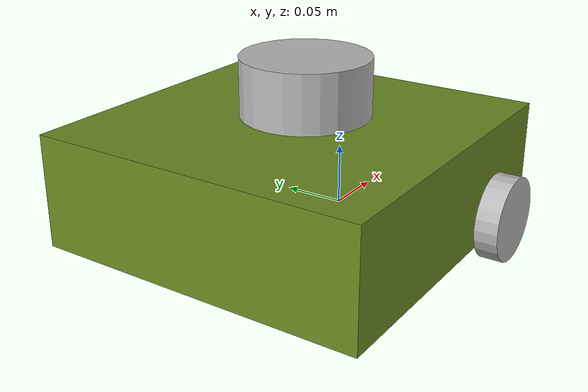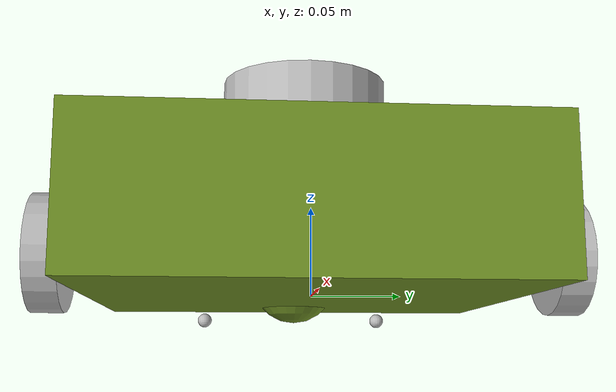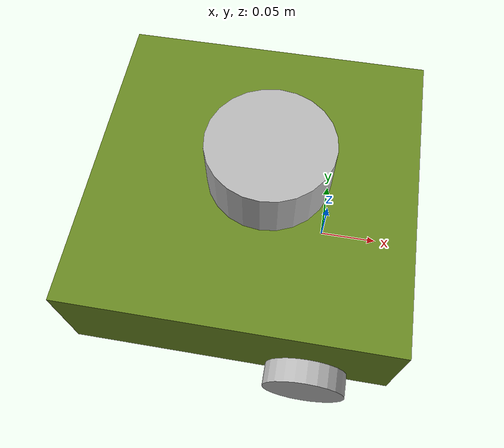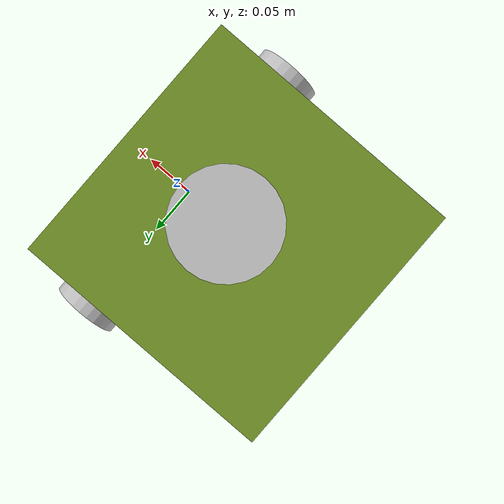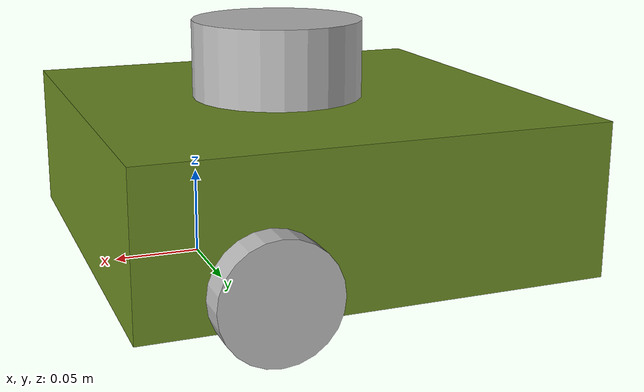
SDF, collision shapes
<?xml version="1.0" ?>
<sdf version="1.5">
  <model name="turtlebot3_waffle_rl">
  <pose>0.0 0.0 0.0 0.0 0.0 0.0</pose>

    <link name="base_footprint"/>

    <link name="base_link">

      <inertial>
        <pose>-0.064 0 0.048 0 0 0</pose>
        <inertia>
          <ixx>4.2111447e-02</ixx>
          <ixy>0</ixy>
          <ixz>0</ixz>
          <iyy>4.2111447e-02</iyy>
          <iyz>0</iyz>
          <izz>7.5254874e-02</izz>
        </inertia>
        <mass>1.3729096e+00</mass>
      </inertial>

      <collision name="base_collision">
        <pose>-0.064 0 0.048 0 0 0</pose>
        <geometry>
          <box>
            <size>0.265 0.265 0.089</size>
          </box>
        </geometry>
      </collision>

      <visual name="base_visual">
        <pose>-0.064 0 0 0 0 0</pose>
        <geometry>
          <mesh>
            <uri>model://turtlebot3_common/meshes/waffle_base.dae</uri>
            <scale>0.001 0.001 0.001</scale>
          </mesh>
        </geometry>
                <material>
          <shader type='pixel'>
            <normal_map>__default__</normal_map>
          </shader>
          <script>
            <name>ModelPreview_1::base_link::base_visual_MATERIAL_</name>
            <uri>__default__</uri>
          </script>
          <ambient>0.415 0.541 0.133 0</ambient>
          <diffuse>0.415 0.541 0.133 1</diffuse>
          <specular>0.1 0.1 0.1 1</specular>
          <emissive>0 0 0 1</emissive>
        </material>
      </visual>

      <collision name='caster_collision'>
        <pose>-0.15 0 0.023 0 0 0</pose>
        <geometry>
            <sphere>
            <radius>.03</radius>
          </sphere>
        </geometry>

        <surface>
          <friction>
            <ode>
              <mu>0</mu>
              <mu2>0</mu2>
              <slip1>1.0</slip1>
              <slip2>1.0</slip2>
            </ode>
          </friction>
        </surface>
      </collision>

      <visual name='caster_visual'>
        <pose>-0.15 0 0.023 0 0 0</pose>
        <geometry>
          <sphere>
        <radius>.03</radius>
          </sphere>
        </geometry>
        <material>
          <shader type='pixel'>
            <normal_map>__default__</normal_map>
          </shader>
          <script>
            <name>ModelPreview_1::base_link::caster_visual_MATERIAL_</name>
            <uri>__default__</uri>
          </script>
          <ambient>0 0 0 1</ambient>
          <diffuse>0 0 0 1</diffuse>
          <specular>0 0 0 1</specular>
          <emissive>0 0 0 1</emissive>
        </material>
      </visual>

    </link>

    <link name="imu_link">
      <sensor name="tb3_imu" type="imu">
        <always_on>true</always_on>
        <update_rate>200</update_rate>
        <imu>
          <angular_velocity>
            <x>
              <noise type="gaussian">
                <mean>0.0</mean>
                <stddev>2e-4</stddev>
              </noise>
            </x>
            <y>
              <noise type="gaussian">
                <mean>0.0</mean>
                <stddev>2e-4</stddev>
              </noise>
            </y>
            <z>
              <noise type="gaussian">
                <mean>0.0</mean>
                <stddev>2e-4</stddev>
              </noise>
            </z>
          </angular_velocity>
          <linear_acceleration>
            <x>
              <noise type="gaussian">
                <mean>0.0</mean>
                <stddev>1.7e-2</stddev>
              </noise>
            </x>
            <y>
              <noise type="gaussian">
                <mean>0.0</mean>
                <stddev>1.7e-2</stddev>
              </noise>
            </y>
            <z>
              <noise type="gaussian">
                <mean>0.0</mean>
                <stddev>1.7e-2</stddev>
              </noise>
            </z>
          </linear_acceleration>
        </imu>
        <plugin name="turtlebot3_imu" filename="libgazebo_ros_imu_sensor.so">
          <ros>
            <remapping>~/out:=imu</remapping>
          </ros>
        </plugin>
      </sensor>
    </link>

    <link name="base_scan">
      <inertial>
        <pose>-0.052 0 0.111 0 0 0</pose>
        <inertia>
          <ixx>0.001</ixx>
          <ixy>0.000</ixy>
          <ixz>0.000</ixz>
          <iyy>0.001</iyy>
          <iyz>0.000</iyz>
          <izz>0.001</izz>
        </inertia>
        <mass>0.114</mass>
      </inertial>

      <collision name="lidar_sensor_collision">
        <pose>-0.052 0 0.111 0 0 0</pose>
        <geometry>
          <cylinder>
            <radius>0.0508</radius>
            <length>0.055</length>
          </cylinder>
        </geometry>
      </collision>

      <visual name="lidar_sensor_visual">
        <pose>-0.064 0 0.121 0 0 0</pose>
        <geometry>
          <mesh>
            <uri>model://turtlebot3_common/meshes/lds.dae</uri>
            <scale>0.001 0.001 0.001</scale>
          </mesh>
        </geometry>
      </visual>

      <sensor name="hls_lfcd_lds" type="gpu_ray">
        <always_on>true</always_on>
        <visualize>false</visualize>
        <pose>-0.064 0 0.121 0 0 0</pose>
        <update_rate>20</update_rate>
        <ray>
          <scan>
            <horizontal>
              <samples>1080</samples>
              <resolution>1.000000</resolution>
              <min_angle>0.000000</min_angle>
                <max_angle>6.283185</max_angle>
            </horizontal>
          </scan>
          <range>
            <min>0.1000</min>
            <max>10.0</max>
            <resolution>0.015000</resolution>
          </range>
        </ray>
        <plugin name="turtlebot3_laserscan" filename="libgazebo_ros_ray_sensor.so">
          <ros>
            <remapping>~/out:=scan_visual</remapping>
          </ros>
          <output_type>sensor_msgs/LaserScan</output_type>
          <frame_name>base_scan</frame_name>
        </plugin>
      </sensor>
      <sensor name="collision_scan_sensor" type="ray">
        <always_on>true</always_on>
        <visualize>false</visualize>
        <pose>-0.064 0 0.121 0 0 0</pose>
        <update_rate>20</update_rate>
        <ray>
          <scan>
          <horizontal>
            <samples>1080</samples>
            <resolution>1.000000</resolution>
            <min_angle>0.000000</min_angle>
            <max_angle>6.283185</max_angle>
          </horizontal>
          </scan>
          <range>
          <min>0.1900</min>
          <max>10.0</max>
          <resolution>0.015000</resolution>
          </range>
          <!-- No noise for collision_scan_sensor -->
        </ray>
        <plugin name="collision_scan_plugin" filename="libgazebo_ros_ray_sensor.so">
          <ros>
          <remapping>~/out:=scan_collision</remapping>
          </ros>
          <output_type>sensor_msgs/LaserScan</output_type>
          <frame_name>base_scan</frame_name>
        </plugin>
      </sensor>
    </link>

    <link name="wheel_left_link">

      <inertial>
        <pose>0.0 0.144 0.023 -1.57 0 0</pose>
        <inertia>
          <ixx>1.1175580e-05</ixx>
          <ixy>-4.2369783e-11</ixy>
          <ixz>-5.9381719e-09</ixz>
          <iyy>1.1192413e-05</iyy>
          <iyz>-1.4400107e-11</iyz>
          <izz>2.0712558e-05</izz>
        </inertia>
        <mass>0.1</mass>
      </inertial>

      <collision name="wheel_left_collision">
        <pose>0.0 0.144 0.023 -1.57 0 0</pose>
        <geometry>
          <cylinder>
            <radius>0.033</radius>
            <length>0.018</length>
          </cylinder>
        </geometry>
        <surface>
          <friction>
            <ode>
              <mu>100000.0</mu>
              <mu2>100000.0</mu2>
              <fdir1>0 0 0</fdir1>
              <slip1>0.0</slip1>
              <slip2>0.0</slip2>
            </ode>
          </friction>
          <contact>
            <ode>
              <soft_cfm>0</soft_cfm>
              <soft_erp>0.2</soft_erp>
              <kp>1e+5</kp>
              <kd>1</kd>
              <max_vel>0.01</max_vel>
              <min_depth>0.001</min_depth>
            </ode>
          </contact>
        </surface>
      </collision>

      <visual name="wheel_left_visual">
        <pose>0.0 0.144 0.023 0 0 0</pose>
        <geometry>
          <mesh>
            <uri>model://turtlebot3_common/meshes/tire.dae</uri>
            <scale>0.001 0.001 0.001</scale>
          </mesh>
        </geometry>
      </visual>
    </link>

    <link name="wheel_right_link">

      <inertial>
        <pose>0.0 -0.144 0.023 -1.57 0 0</pose>
        <inertia>
          <ixx>1.1175580e-05</ixx>
          <ixy>-4.2369783e-11</ixy>
          <ixz>-5.9381719e-09</ixz>
          <iyy>1.1192413e-05</iyy>
          <iyz>-1.4400107e-11</iyz>
          <izz>2.0712558e-05</izz>
        </inertia>
        <mass>0.1</mass>
      </inertial>

      <collision name="wheel_right_collision">
        <pose>0.0 -0.144 0.023 -1.57 0 0</pose>
        <geometry>
          <cylinder>
            <radius>0.033</radius>
            <length>0.018</length>
          </cylinder>
        </geometry>
        <surface>
          <friction>
            <ode>
              <mu>100000.0</mu>
              <mu2>100000.0</mu2>
              <fdir1>0 0 0</fdir1>
              <slip1>0.0</slip1>
              <slip2>0.0</slip2>
            </ode>
          </friction>
          <contact>
            <ode>
              <soft_cfm>0</soft_cfm>
              <soft_erp>0.2</soft_erp>
              <kp>1e+5</kp>
              <kd>1</kd>
              <max_vel>0.01</max_vel>
              <min_depth>0.001</min_depth>
            </ode>
          </contact>
        </surface>
      </collision>

      <visual name="wheel_right_visual">
        <pose>0.0 -0.144 0.023 0 0 0</pose>
        <geometry>
          <mesh>
            <uri>model://turtlebot3_common/meshes/tire.dae</uri>
            <scale>0.001 0.001 0.001</scale>
          </mesh>
        </geometry>
      </visual>
    </link>

    <link name='caster_back_right_link'>
      <pose>-0.177 -0.064 -0.004 -1.57 0 0</pose>
      <inertial>
        <mass>0.001</mass>
        <inertia>
          <ixx>0.00001</ixx>
          <ixy>0.000</ixy>
          <ixz>0.000</ixz>
          <iyy>0.00001</iyy>
          <iyz>0.000</iyz>
          <izz>0.00001</izz>
        </inertia>
      </inertial>
      <collision name='collision'>
        <geometry>
          <sphere>
            <radius>0.005000</radius>
          </sphere>
        </geometry>
        <surface>
          <contact>
            <ode>
              <soft_cfm>0</soft_cfm>
              <soft_erp>0.2</soft_erp>
              <kp>1e+5</kp>
              <kd>1</kd>
              <max_vel>0.01</max_vel>
              <min_depth>0.001</min_depth>
            </ode>
          </contact>
        </surface>
      </collision>
    </link>

    <link name='caster_back_left_link'>
      <pose>-0.177 0.064 -0.004 -1.57 0 0</pose>
      <inertial>
        <mass>0.001</mass>
        <inertia>
          <ixx>0.00001</ixx>
          <ixy>0.000</ixy>
          <ixz>0.000</ixz>
          <iyy>0.00001</iyy>
          <iyz>0.000</iyz>
          <izz>0.00001</izz>
        </inertia>
      </inertial>
      <collision name='collision'>
        <geometry>
          <sphere>
            <radius>0.005000</radius>
          </sphere>
        </geometry>
        <surface>
          <contact>
            <ode>
              <soft_cfm>0</soft_cfm>
              <soft_erp>0.2</soft_erp>
              <kp>1e+5</kp>
              <kd>1</kd>
              <max_vel>0.01</max_vel>
              <min_depth>0.001</min_depth>
            </ode>
          </contact>
        </surface>
      </collision>
    </link>

    <link name="camera_link"/>

    <link name="camera_rgb_frame">
      <inertial>
        <pose>0.069 -0.047 0.107 0 0 0</pose>
        <inertia>
          <ixx>0.001</ixx>
          <ixy>0.000</ixy>
          <ixz>0.000</ixz>
          <iyy>0.001</iyy>
          <iyz>0.000</iyz>
          <izz>0.001</izz>
        </inertia>
        <mass>0.035</mass>
      </inertial>

      <pose>0.069 -0.047 0.107 0 0 0</pose>
      <sensor name="camera" type="camera">
        <always_on>true</always_on>
        <visualize>false</visualize>
        <update_rate>30</update_rate>
        <camera name="intel_realsense_r200">
          <horizontal_fov>1.02974</horizontal_fov>
          <image>
            <width>1920</width>
            <height>1080</height>
            <format>R8G8B8</format>
          </image>
          <clip>
            <near>0.02</near>
            <far>300</far>
          </clip>
          <noise>
            <type>gaussian</type>
            <mean>0.0</mean>
            <stddev>0.007</stddev>
          </noise>
        </camera>
          <plugin name="camera_driver" filename="libgazebo_ros_camera.so">
            <ros>
            </ros>
          </plugin>
      </sensor>
    </link>

    <joint name="base_joint" type="fixed">
      <parent>base_footprint</parent>
      <child>base_link</child>
      <pose>0.0 0.0 0.010 0 0 0</pose>
    </joint>

    <joint name="wheel_left_joint" type="revolute">
      <parent>base_link</parent>
      <child>wheel_left_link</child>
      <pose>0.0 0.144 0.023 -1.57 0 0</pose>
      <axis>
        <xyz>0 0 1</xyz>
      </axis>
    </joint>

    <joint name="wheel_right_joint" type="revolute">
      <parent>base_link</parent>
      <child>wheel_right_link</child>
      <pose>0.0 -0.144 0.023 -1.57 0 0</pose>
      <axis>
        <xyz>0 0 1</xyz>
      </axis>
    </joint>

    <joint name='caster_back_right_joint' type='revolute'>
      <parent>base_link</parent>
      <child>caster_back_right_link</child>
    </joint>

    <joint name='caster_back_left_joint' type='revolute'>
      <parent>base_link</parent>
      <child>caster_back_left_link</child>
    </joint>

    <joint name="imu_joint" type="fixed">
      <parent>base_link</parent>
      <child>imu_link</child>
      <pose>-0.032 0 0.068 0 0 0</pose>
      <axis>
        <xyz>0 0 1</xyz>
      </axis>
    </joint>

    <joint name="lidar_joint" type="fixed">
      <parent>base_link</parent>
      <child>base_scan</child>
      <pose>-0.064 0 0.121 0 0 0</pose>
      <axis>
        <xyz>0 0 1</xyz>
      </axis>
    </joint>

    <joint name="camera_joint" type="fixed">
      <parent>base_link</parent>
      <child>camera_link</child>
      <pose>0.064 -0.065 0.094 0 0 0</pose>
      <axis>
        <xyz>0 0 1</xyz>
      </axis>
    </joint>

    <joint name="camera_rgb_joint" type="fixed">
      <parent>camera_link</parent>
      <child>camera_rgb_frame</child>
      <pose>0.005 0.018 0.013 0 0 0</pose>
      <axis>
        <xyz>0 0 1</xyz>
      </axis>
    </joint>

    <plugin name="turtlebot3_diff_drive" filename="libgazebo_ros_diff_drive.so">

      <ros>
      </ros>

      <update_rate>30</update_rate>

      <!-- wheels -->
      <left_joint>wheel_left_joint</left_joint>
      <right_joint>wheel_right_joint</right_joint>

      <!-- kinematics -->
      <wheel_separation>0.287</wheel_separation>
      <wheel_diameter>0.066</wheel_diameter>

      <!-- limits -->
      <max_wheel_torque>20</max_wheel_torque>
      <max_wheel_acceleration>2.5</max_wheel_acceleration>

      <command_topic>cmd_vel</command_topic>

      <!-- output -->
      <publish_odom>true</publish_odom>
      <publish_odom_tf>true</publish_odom_tf>
      <publish_wheel_tf>false</publish_wheel_tf>

      <odometry_topic>odom</odometry_topic>
      <odometry_frame>odom</odometry_frame>
      <robot_base_frame>base_footprint</robot_base_frame>

    </plugin>

    <plugin name="turtlebot3_joint_state" filename="libgazebo_ros_joint_state_publisher.so">
      <ros>
        <remapping>~/out:=joint_states</remapping>
      </ros>
      <update_rate>30</update_rate>
      <joint_name>wheel_left_joint</joint_name>
      <joint_name>wheel_right_joint</joint_name>
    </plugin>

  </model>
</sdf>
